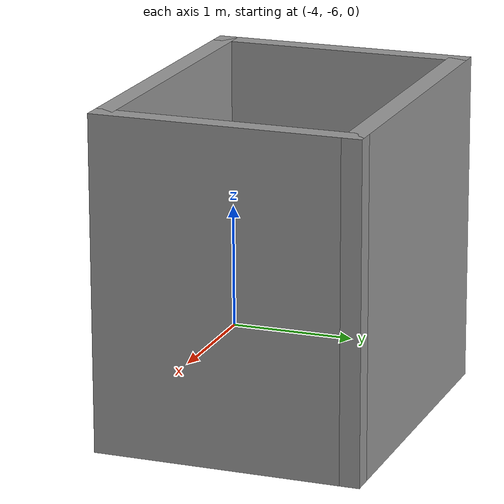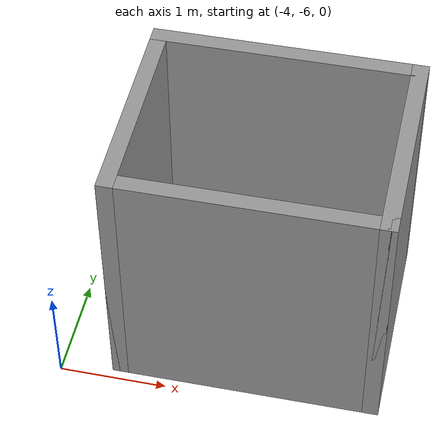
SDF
<?xml version='1.0'?>
<sdf version='1.7'>
  <model name='my_test_world_1'>
    <pose>-1.7625 -2.9575 0 0 -0 0</pose>
    <link name='Wall_0'>
      <collision name='Wall_0_Collision'>
        <geometry>
          <box>
            <size>2 0.15 2.5</size>
          </box>
        </geometry>
        <pose>0 0 1.25 0 -0 0</pose>
      </collision>
      <visual name='Wall_0_Visual'>
        <pose>0 0 1.25 0 -0 0</pose>
        <geometry>
          <box>
            <size>2 0.15 2.5</size>
          </box>
        </geometry>
        <material>
          <script>
            <uri>file://media/materials/scripts/gazebo.material</uri>
            <name>Gazebo/Grey</name>
          </script>
          <ambient>1 1 1 1</ambient>
        </material>
        <meta>
          <layer>0</layer>
        </meta>
      </visual>
      <pose>-1.6875 -1.9575 0 0 -0 -1.5708</pose>
    </link>
    <link name='Wall_1'>
      <collision name='Wall_1_Collision'>
        <geometry>
          <box>
            <size>2.5 0.15 2.5</size>
          </box>
        </geometry>
        <pose>0 0 1.25 0 -0 0</pose>
      </collision>
      <visual name='Wall_1_Visual'>
        <pose>0 0 1.25 0 -0 0</pose>
        <geometry>
          <box>
            <size>2.5 0.15 2.5</size>
          </box>
        </geometry>
        <material>
          <script>
            <uri>file://media/materials/scripts/gazebo.material</uri>
            <name>Gazebo/Grey</name>
          </script>
          <ambient>1 1 1 1</ambient>
        </material>
        <meta>
          <layer>0</layer>
        </meta>
      </visual>
      <pose>-0.5125 -2.8825 0 0 -0 0</pose>
    </link>
    <link name='Wall_2'>
      <collision name='Wall_2_Collision'>
        <geometry>
          <box>
            <size>2 0.15 2.5</size>
          </box>
        </geometry>
        <pose>0 0 1.25 0 -0 0</pose>
      </collision>
      <visual name='Wall_2_Visual'>
        <pose>0 0 1.25 0 -0 0</pose>
        <geometry>
          <box>
            <size>2 0.15 2.5</size>
          </box>
        </geometry>
        <material>
          <script>
            <uri>file://media/materials/scripts/gazebo.material</uri>
            <name>Gazebo/Grey</name>
          </script>
          <ambient>1 1 1 1</ambient>
        </material>
        <meta>
          <layer>0</layer>
        </meta>
      </visual>
      <pose>0.6625 -1.9575 0 0 -0 1.5708</pose>
    </link>
    <link name='Wall_3'>
      <collision name='Wall_3_Collision'>
        <geometry>
          <box>
            <size>2.5 0.15 2.5</size>
          </box>
        </geometry>
        <pose>0 0 1.25 0 -0 0</pose>
      </collision>
      <visual name='Wall_3_Visual'>
        <pose>0 0 1.25 0 -0 0</pose>
        <geometry>
          <box>
            <size>2.5 0.15 2.5</size>
          </box>
        </geometry>
        <material>
          <script>
            <uri>file://media/materials/scripts/gazebo.material</uri>
            <name>Gazebo/Grey</name>
          </script>
          <ambient>1 1 1 1</ambient>
        </material>
        <meta>
          <layer>0</layer>
        </meta>
      </visual>
      <pose>-0.5125 -1.0325 0 0 -0 3.14159</pose>
    </link>
    <static>1</static>
  </model>
</sdf>
